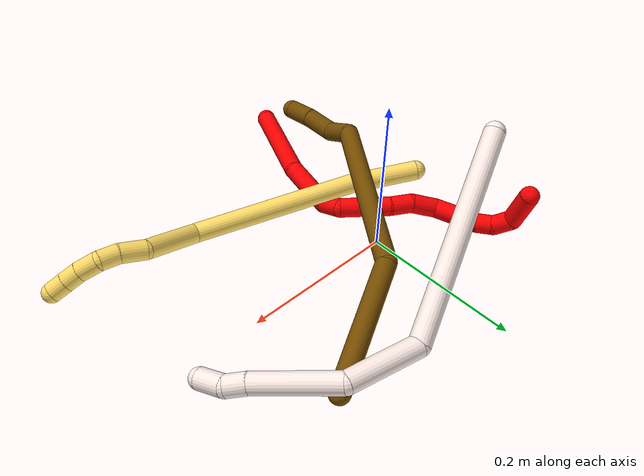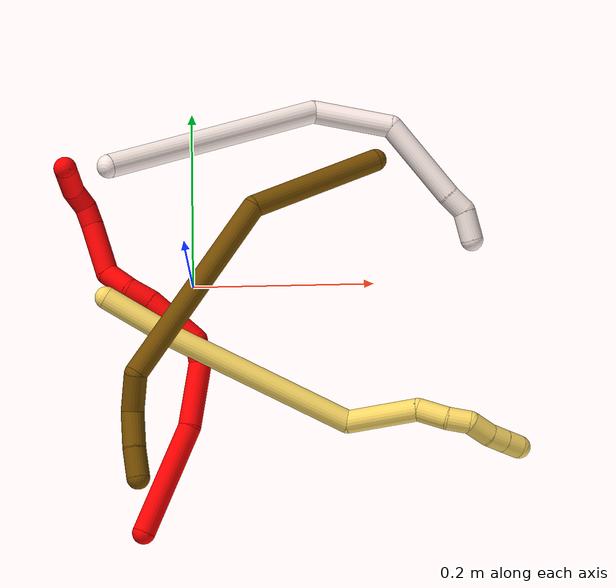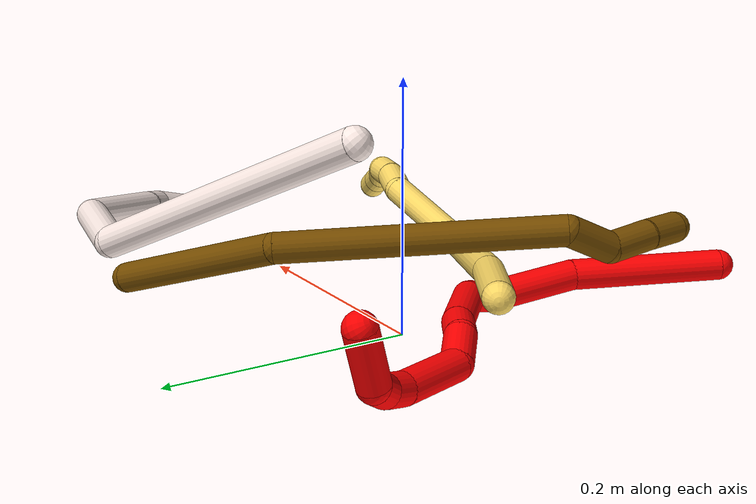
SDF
<sdf version="1.7">
 <world name="default">
  <model name="photoneo_s_sensor">
   <static>1</static>
   <pose>0 0 2 1.57079 1.57079 3.14159</pose>
   <link name="link">
    <inertial><mass>0.1</mass></inertial>
    <sensor name="sensor" type="depth">
     <update_rate>30</update_rate>
     <camera>
      <horizontal_fov>1.22</horizontal_fov>
      <image><width>1920</width><height>1200</height><format>B8G8R8</format></image>
      <clip><near>0.1</near><far>4</far></clip>
      <depth_camera><output>points</output></depth_camera>
     </camera>
     <plugin name="camera_plugin" filename="libgazebo_ros_depth_camera.so">
      <baseline>0.2</baseline>
      <alwaysOn>1</alwaysOn>
      <updateRate>0.0</updateRate>
      <cameraName>camera_ir</cameraName>
      <imageTopicName>/camera/color/image_raw</imageTopicName>
      <cameraInfoTopicName>/camera/color/camera_info</cameraInfoTopicName>
      <depthImageTopicName>/camera/depth/image_raw</depthImageTopicName>
      <depthImageCameraInfoTopicName>/camera/depth/camera_info</depthImageCameraInfoTopicName>
      <pointCloudTopicName>/camera/depth/points</pointCloudTopicName>
      <frameName>fr_optical</frameName>
      <pointCloudCutoff>0.1</pointCloudCutoff>
      <pointCloudCutoffMax>2.0</pointCloudCutoffMax>
      <distortionK1>0</distortionK1>
      <distortionK2>0</distortionK2>
      <distortionK3>0</distortionK3>
      <distortionT1>0</distortionT1>
      <distortionT2>0</distortionT2>
      <CxPrime>0</CxPrime>
      <Cx>0</Cx>
      <Cy>0</Cy>
      <focalLength>0</focalLength>
      <hackBaseline>0</hackBaseline>
     </plugin>
    </sensor>
   </link>
  </model>
  <model name="bin">
   <static>1</static>
   <link name="bottom">
    <collision name="collision-bottom">
     <pose>0 0 -0.01 0 -0 0</pose>
     <geometry><box><size>0.8 0.6 0.02</size></box></geometry>
     <surface>
      <friction><ode><mu>100</mu><mu2>100</mu2></ode></friction>
      <contact><collide_bitmask>65535</collide_bitmask></contact>
     </surface>
    </collision>
   </link>
   <link name="west_wall">
    <collision name="collision-west_wall">
     <pose>-0.41 0 0.1 0 -0 0</pose>
     <geometry><box><size>0.02 0.6 0.2</size></box></geometry>
     <surface>
      <friction><ode><mu>100</mu><mu2>100</mu2></ode></friction>
      <contact><collide_bitmask>65535</collide_bitmask></contact>
     </surface>
    </collision>
   </link>
   <link name="east_wall">
    <collision name="collision-east_wall">
     <pose>0.41 0 0.1 0 -0 0</pose>
     <geometry><box><size>0.02 0.6 0.2</size></box></geometry>
     <surface>
      <friction><ode><mu>100</mu><mu2>100</mu2></ode></friction>
      <contact><collide_bitmask>65535</collide_bitmask></contact>
     </surface>
    </collision>
   </link>
   <link name="south_wall">
    <collision name="collision-south_wall">
     <pose>0 -0.31 0.1 0 -0 0</pose>
     <geometry><box><size>0.8 0.02 0.2</size></box></geometry>
     <surface>
      <friction><ode><mu>100</mu><mu2>100</mu2></ode></friction>
      <contact><collide_bitmask>65535</collide_bitmask></contact>
     </surface>
    </collision>
   </link>
   <link name="north_wall">
    <collision name="collision-north_wall">
     <pose>0 0.31 0.1 0 -0 0</pose>
     <geometry><box><size>0.8 0.02 0.2</size></box></geometry>
     <surface>
      <friction><ode><mu>100</mu><mu2>100</mu2></ode></friction>
      <contact><collide_bitmask>65535</collide_bitmask></contact>
     </surface>
    </collision>
   </link>
  </model>
  <model name="2">
   <static>0</static>
   <link name="2">
    <collision name="collision-cylinder-e_1_1_4">
     <pose>-0.040839 0.022211 0.04113 -0.495154 -0.718082 0.189162</pose>
     <geometry><cylinder><radius>0.0125</radius><length>0.124142</length></cylinder></geometry>
     <surface>
      <friction><ode><mu>1.16</mu><mu2>1.16</mu2><slip1>0</slip1><slip2>0</slip2></ode></friction>
      <contact><ode><kp>1e+06</kp><kd>1</kd><max_vel>0</max_vel><min_depth>0.001</min_depth></ode></contact>
     </surface>
    </collision>
    <visual name="visual-cylinder-e_1_1_4">
     <pose>-0.040839 0.022211 0.04113 -0.495154 -0.718082 0.189162</pose>
     <geometry><cylinder><radius>0.0125</radius><length>0.124142</length></cylinder></geometry>
     <material><ambient>1 0 0 1</ambient></material>
    </visual>
    <collision name="collision-cylinder-e_2_4_5">
     <pose>-0.102853 0.06613 0.103023 -0.807619 -0.613988 0.269277</pose>
     <geometry><cylinder><radius>0.0125</radius><length>0.073505</length></cylinder></geometry>
     <surface>
      <friction><ode><mu>1.16</mu><mu2>1.16</mu2><slip1>0</slip1><slip2>0</slip2></ode></friction>
      <contact><ode><kp>1e+06</kp><kd>1</kd><max_vel>0</max_vel><min_depth>0.001</min_depth></ode></contact>
     </surface>
    </collision>
    <visual name="visual-cylinder-e_2_4_5">
     <pose>-0.102853 0.06613 0.103023 -0.807619 -0.613988 0.269277</pose>
     <geometry><cylinder><radius>0.0125</radius><length>0.073505</length></cylinder></geometry>
     <material><ambient>1 0 0 1</ambient></material>
    </visual>
    <collision name="collision-cylinder-e_3_5_6">
     <pose>-0.133886 0.096148 0.125522 -1.36507 -0.859992 0.713668</pose>
     <geometry><cylinder><radius>0.0125</radius><length>0.02602</length></cylinder></geometry>
     <surface>
      <friction><ode><mu>1.16</mu><mu2>1.16</mu2><slip1>0</slip1><slip2>0</slip2></ode></friction>
      <contact><ode><kp>1e+06</kp><kd>1</kd><max_vel>0</max_vel><min_depth>0.001</min_depth></ode></contact>
     </surface>
    </collision>
    <visual name="visual-cylinder-e_3_5_6">
     <pose>-0.133886 0.096148 0.125522 -1.36507 -0.859992 0.713668</pose>
     <geometry><cylinder><radius>0.0125</radius><length>0.02602</length></cylinder></geometry>
     <material><ambient>1 0 0 1</ambient></material>
    </visual>
    <collision name="collision-cylinder-e_4_6_7">
     <pose>-0.153543 0.133927 0.117036 -1.90461 -0.30433 0.424489</pose>
     <geometry><cylinder><radius>0.0125</radius><length>0.065388</length></cylinder></geometry>
     <surface>
      <friction><ode><mu>1.16</mu><mu2>1.16</mu2><slip1>0</slip1><slip2>0</slip2></ode></friction>
      <contact><ode><kp>1e+06</kp><kd>1</kd><max_vel>0</max_vel><min_depth>0.001</min_depth></ode></contact>
     </surface>
    </collision>
    <visual name="visual-cylinder-e_4_6_7">
     <pose>-0.153543 0.133927 0.117036 -1.90461 -0.30433 0.424489</pose>
     <geometry><cylinder><radius>0.0125</radius><length>0.065388</length></cylinder></geometry>
     <material><ambient>1 0 0 1</ambient></material>
    </visual>
    <collision name="collision-cylinder-e_5_7_8">
     <pose>-0.165566 0.175805 0.100568 -2.03731 -0.158918 0.257079</pose>
     <geometry><cylinder><radius>0.0125</radius><length>0.02814</length></cylinder></geometry>
     <surface>
      <friction><ode><mu>1.16</mu><mu2>1.16</mu2><slip1>0</slip1><slip2>0</slip2></ode></friction>
      <contact><ode><kp>1e+06</kp><kd>1</kd><max_vel>0</max_vel><min_depth>0.001</min_depth></ode></contact>
     </surface>
    </collision>
    <visual name="visual-cylinder-e_5_7_8">
     <pose>-0.165566 0.175805 0.100568 -2.03731 -0.158918 0.257079</pose>
     <geometry><cylinder><radius>0.0125</radius><length>0.02814</length></cylinder></geometry>
     <material><ambient>1 0 0 1</ambient></material>
    </visual>
    <collision name="collision-cylinder-e_6_8_9">
     <pose>-0.16818 0.204904 0.091628 -1.73067 -0.022914 0.026905</pose>
     <geometry><cylinder><radius>0.0125</radius><length>0.033823</length></cylinder></geometry>
     <surface>
      <friction><ode><mu>1.16</mu><mu2>1.16</mu2><slip1>0</slip1><slip2>0</slip2></ode></friction>
      <contact><ode><kp>1e+06</kp><kd>1</kd><max_vel>0</max_vel><min_depth>0.001</min_depth></ode></contact>
     </surface>
    </collision>
    <visual name="visual-cylinder-e_6_8_9">
     <pose>-0.16818 0.204904 0.091628 -1.73067 -0.022914 0.026905</pose>
     <geometry><cylinder><radius>0.0125</radius><length>0.033823</length></cylinder></geometry>
     <material><ambient>1 0 0 1</ambient></material>
    </visual>
    <collision name="collision-cylinder-e_7_9_10">
     <pose>-0.184824 0.245454 0.093493 -1.38206 -0.589815 0.492283</pose>
     <geometry><cylinder><radius>0.0125</radius><length>0.058454</length></cylinder></geometry>
     <surface>
      <friction><ode><mu>1.16</mu><mu2>1.16</mu2><slip1>0</slip1><slip2>0</slip2></ode></friction>
      <contact><ode><kp>1e+06</kp><kd>1</kd><max_vel>0</max_vel><min_depth>0.001</min_depth></ode></contact>
     </surface>
    </collision>
    <visual name="visual-cylinder-e_7_9_10">
     <pose>-0.184824 0.245454 0.093493 -1.38206 -0.589815 0.492283</pose>
     <geometry><cylinder><radius>0.0125</radius><length>0.058454</length></cylinder></geometry>
     <material><ambient>1 0 0 1</ambient></material>
    </visual>
    <collision name="collision-cylinder-e_8_10_11">
     <pose>-0.208308 0.276805 0.09784 -1.59888 -0.767135 0.786826</pose>
     <geometry><cylinder><radius>0.0125</radius><length>0.020826</length></cylinder></geometry>
     <surface>
      <friction><ode><mu>1.16</mu><mu2>1.16</mu2><slip1>0</slip1><slip2>0</slip2></ode></friction>
      <contact><ode><kp>1e+06</kp><kd>1</kd><max_vel>0</max_vel><min_depth>0.001</min_depth></ode></contact>
     </surface>
    </collision>
    <visual name="visual-cylinder-e_8_10_11">
     <pose>-0.208308 0.276805 0.09784 -1.59888 -0.767135 0.786826</pose>
     <geometry><cylinder><radius>0.0125</radius><length>0.020826</length></cylinder></geometry>
     <material><ambient>1 0 0 1</ambient></material>
    </visual>
    <collision name="collision-cylinder-e_9_11_12">
     <pose>-0.223741 0.291389 0.092796 -2.16906 -0.763049 1.2984</pose>
     <geometry><cylinder><radius>0.0125</radius><length>0.023745</length></cylinder></geometry>
     <surface>
      <friction><ode><mu>1.16</mu><mu2>1.16</mu2><slip1>0</slip1><slip2>0</slip2></ode></friction>
      <contact><ode><kp>1e+06</kp><kd>1</kd><max_vel>0</max_vel><min_depth>0.001</min_depth></ode></contact>
     </surface>
    </collision>
    <visual name="visual-cylinder-e_9_11_12">
     <pose>-0.223741 0.291389 0.092796 -2.16906 -0.763049 1.2984</pose>
     <geometry><cylinder><radius>0.0125</radius><length>0.023745</length></cylinder></geometry>
     <material><ambient>1 0 0 1</ambient></material>
    </visual>
    <collision name="collision-cylinder-e_10_12_2">
     <pose>-0.251798 0.295249 0.076852 2.85868 -1.04304 -2.6557</pose>
     <geometry><cylinder><radius>0.0125</radius><length>0.045956</length></cylinder></geometry>
     <surface>
      <friction><ode><mu>1.16</mu><mu2>1.16</mu2><slip1>0</slip1><slip2>0</slip2></ode></friction>
      <contact><ode><kp>1e+06</kp><kd>1</kd><max_vel>0</max_vel><min_depth>0.001</min_depth></ode></contact>
     </surface>
    </collision>
    <visual name="visual-cylinder-e_10_12_2">
     <pose>-0.251798 0.295249 0.076852 2.85868 -1.04304 -2.6557</pose>
     <geometry><cylinder><radius>0.0125</radius><length>0.045956</length></cylinder></geometry>
     <material><ambient>1 0 0 1</ambient></material>
    </visual>
    <collision name="collision-sphere-2">
     <pose>-0.27165 0.292019 0.065741 0 -0 0</pose>
     <geometry><sphere><radius>0.0125</radius></sphere></geometry>
     <surface>
      <friction><ode><mu>1.16</mu><mu2>1.16</mu2><slip1>0</slip1><slip2>0</slip2></ode></friction>
      <contact><ode><kp>1e+06</kp><kd>1</kd><max_vel>0</max_vel><min_depth>0.001</min_depth></ode></contact>
     </surface>
    </collision>
    <visual name="visual-sphere-2">
     <pose>-0.27165 0.292019 0.065741 0 -0 0</pose>
     <geometry><sphere><radius>0.0125</radius></sphere></geometry>
     <material><ambient>1 0 0 1</ambient></material>
    </visual>
    <collision name="collision-sphere-12">
     <pose>-0.231947 0.298479 0.087964 0 -0 0</pose>
     <geometry><sphere><radius>0.0125</radius></sphere></geometry>
     <surface>
      <friction><ode><mu>1.16</mu><mu2>1.16</mu2><slip1>0</slip1><slip2>0</slip2></ode></friction>
      <contact><ode><kp>1e+06</kp><kd>1</kd><max_vel>0</max_vel><min_depth>0.001</min_depth></ode></contact>
     </surface>
    </collision>
    <visual name="visual-sphere-12">
     <pose>-0.231947 0.298479 0.087964 0 -0 0</pose>
     <geometry><sphere><radius>0.0125</radius></sphere></geometry>
     <material><ambient>1 0 0 1</ambient></material>
    </visual>
    <collision name="collision-sphere-11">
     <pose>-0.215535 0.284298 0.097629 0 -0 0</pose>
     <geometry><sphere><radius>0.0125</radius></sphere></geometry>
     <surface>
      <friction><ode><mu>1.16</mu><mu2>1.16</mu2><slip1>0</slip1><slip2>0</slip2></ode></friction>
      <contact><ode><kp>1e+06</kp><kd>1</kd><max_vel>0</max_vel><min_depth>0.001</min_depth></ode></contact>
     </surface>
    </collision>
    <visual name="visual-sphere-11">
     <pose>-0.215535 0.284298 0.097629 0 -0 0</pose>
     <geometry><sphere><radius>0.0125</radius></sphere></geometry>
     <material><ambient>1 0 0 1</ambient></material>
    </visual>
    <collision name="collision-sphere-10">
     <pose>-0.20108 0.269311 0.09805 0 -0 0</pose>
     <geometry><sphere><radius>0.0125</radius></sphere></geometry>
     <surface>
      <friction><ode><mu>1.16</mu><mu2>1.16</mu2><slip1>0</slip1><slip2>0</slip2></ode></friction>
      <contact><ode><kp>1e+06</kp><kd>1</kd><max_vel>0</max_vel><min_depth>0.001</min_depth></ode></contact>
     </surface>
    </collision>
    <visual name="visual-sphere-10">
     <pose>-0.20108 0.269311 0.09805 0 -0 0</pose>
     <geometry><sphere><radius>0.0125</radius></sphere></geometry>
     <material><ambient>1 0 0 1</ambient></material>
    </visual>
    <collision name="collision-sphere-9">
     <pose>-0.168568 0.221596 0.088936 0 -0 0</pose>
     <geometry><sphere><radius>0.0125</radius></sphere></geometry>
     <surface>
      <friction><ode><mu>1.16</mu><mu2>1.16</mu2><slip1>0</slip1><slip2>0</slip2></ode></friction>
      <contact><ode><kp>1e+06</kp><kd>1</kd><max_vel>0</max_vel><min_depth>0.001</min_depth></ode></contact>
     </surface>
    </collision>
    <visual name="visual-sphere-9">
     <pose>-0.168568 0.221596 0.088936 0 -0 0</pose>
     <geometry><sphere><radius>0.0125</radius></sphere></geometry>
     <material><ambient>1 0 0 1</ambient></material>
    </visual>
    <collision name="collision-sphere-4">
     <pose>-0.081678 0.044422 0.082259 0 -0 0</pose>
     <geometry><sphere><radius>0.0125</radius></sphere></geometry>
     <surface>
      <friction><ode><mu>1.16</mu><mu2>1.16</mu2><slip1>0</slip1><slip2>0</slip2></ode></friction>
      <contact><ode><kp>1e+06</kp><kd>1</kd><max_vel>0</max_vel><min_depth>0.001</min_depth></ode></contact>
     </surface>
    </collision>
    <visual name="visual-sphere-4">
     <pose>-0.081678 0.044422 0.082259 0 -0 0</pose>
     <geometry><sphere><radius>0.0125</radius></sphere></geometry>
     <material><ambient>1 0 0 1</ambient></material>
    </visual>
    <collision name="collision-sphere-1">
     <geometry><sphere><radius>0.0125</radius></sphere></geometry>
     <surface>
      <friction><ode><mu>1.16</mu><mu2>1.16</mu2><slip1>0</slip1><slip2>0</slip2></ode></friction>
      <contact><ode><kp>1e+06</kp><kd>1</kd><max_vel>0</max_vel><min_depth>0.001</min_depth></ode></contact>
     </surface>
    </collision>
    <visual name="visual-sphere-1">
     <geometry><sphere><radius>0.0125</radius></sphere></geometry>
     <material><ambient>1 0 0 1</ambient></material>
    </visual>
    <collision name="collision-sphere-8">
     <pose>-0.167793 0.188213 0.094319 0 -0 0</pose>
     <geometry><sphere><radius>0.0125</radius></sphere></geometry>
     <surface>
      <friction><ode><mu>1.16</mu><mu2>1.16</mu2><slip1>0</slip1><slip2>0</slip2></ode></friction>
      <contact><ode><kp>1e+06</kp><kd>1</kd><max_vel>0</max_vel><min_depth>0.001</min_depth></ode></contact>
     </surface>
    </collision>
    <visual name="visual-sphere-8">
     <pose>-0.167793 0.188213 0.094319 0 -0 0</pose>
     <geometry><sphere><radius>0.0125</radius></sphere></geometry>
     <material><ambient>1 0 0 1</ambient></material>
    </visual>
    <collision name="collision-sphere-5">
     <pose>-0.124027 0.087839 0.123788 0 -0 0</pose>
     <geometry><sphere><radius>0.0125</radius></sphere></geometry>
     <surface>
      <friction><ode><mu>1.16</mu><mu2>1.16</mu2><slip1>0</slip1><slip2>0</slip2></ode></friction>
      <contact><ode><kp>1e+06</kp><kd>1</kd><max_vel>0</max_vel><min_depth>0.001</min_depth></ode></contact>
     </surface>
    </collision>
    <visual name="visual-sphere-5">
     <pose>-0.124027 0.087839 0.123788 0 -0 0</pose>
     <geometry><sphere><radius>0.0125</radius></sphere></geometry>
     <material><ambient>1 0 0 1</ambient></material>
    </visual>
    <collision name="collision-sphere-6">
     <pose>-0.143746 0.104457 0.127256 0 -0 0</pose>
     <geometry><sphere><radius>0.0125</radius></sphere></geometry>
     <surface>
      <friction><ode><mu>1.16</mu><mu2>1.16</mu2><slip1>0</slip1><slip2>0</slip2></ode></friction>
      <contact><ode><kp>1e+06</kp><kd>1</kd><max_vel>0</max_vel><min_depth>0.001</min_depth></ode></contact>
     </surface>
    </collision>
    <visual name="visual-sphere-6">
     <pose>-0.143746 0.104457 0.127256 0 -0 0</pose>
     <geometry><sphere><radius>0.0125</radius></sphere></geometry>
     <material><ambient>1 0 0 1</ambient></material>
    </visual>
    <collision name="collision-sphere-7">
     <pose>-0.16334 0.163397 0.106816 0 -0 0</pose>
     <geometry><sphere><radius>0.0125</radius></sphere></geometry>
     <surface>
      <friction><ode><mu>1.16</mu><mu2>1.16</mu2><slip1>0</slip1><slip2>0</slip2></ode></friction>
      <contact><ode><kp>1e+06</kp><kd>1</kd><max_vel>0</max_vel><min_depth>0.001</min_depth></ode></contact>
     </surface>
    </collision>
    <visual name="visual-sphere-7">
     <pose>-0.16334 0.163397 0.106816 0 -0 0</pose>
     <geometry><sphere><radius>0.0125</radius></sphere></geometry>
     <material><ambient>1 0 0 1</ambient></material>
    </visual>
    <inertial>
     <pose>-0.137055 0.14271 0.085529 0 -0 0</pose>
     <mass>0.5</mass>
     <inertia>
      <ixx>0.000221</ixx>
      <ixy>0</ixy>
      <ixz>0</ixz>
      <iyy>0.000267</iyy>
      <iyz>0</iyz>
      <izz>3.7e-05</izz>
     </inertia>
    </inertial>
   </link>
   <pose>-0.054416 -0.27444 0.024196 -2.51314 0.826495 -1.88234</pose>
  </model>
  <model name="5">
   <static>0</static>
   <link name="5">
    <collision name="collision-cylinder-e_1_1_4">
     <pose>-0.000736 -0.003178 0.042032 0.075477 -0.017454 -0.000659</pose>
     <geometry><cylinder><radius>0.0125</radius><length>0.084317</length></cylinder></geometry>
     <surface>
      <friction><ode><mu>1.16</mu><mu2>1.16</mu2><slip1>0</slip1><slip2>0</slip2></ode></friction>
      <contact><ode><kp>1e+06</kp><kd>1</kd><max_vel>0</max_vel><min_depth>0.001</min_depth></ode></contact>
     </surface>
    </collision>
    <visual name="visual-cylinder-e_1_1_4">
     <pose>-0.000736 -0.003178 0.042032 0.075477 -0.017454 -0.000659</pose>
     <geometry><cylinder><radius>0.0125</radius><length>0.084317</length></cylinder></geometry>
     <material><ambient>1 0.858824 0.4 1</ambient></material>
    </visual>
    <collision name="collision-cylinder-e_2_4_5">
     <pose>-0.005713 -0.02486 0.187675 0.176717 -0.04028 -0.003569</pose>
     <geometry><cylinder><radius>0.0125</radius><length>0.210671</length></cylinder></geometry>
     <surface>
      <friction><ode><mu>1.16</mu><mu2>1.16</mu2><slip1>0</slip1><slip2>0</slip2></ode></friction>
      <contact><ode><kp>1e+06</kp><kd>1</kd><max_vel>0</max_vel><min_depth>0.001</min_depth></ode></contact>
     </surface>
    </collision>
    <visual name="visual-cylinder-e_2_4_5">
     <pose>-0.005713 -0.02486 0.187675 0.176717 -0.04028 -0.003569</pose>
     <geometry><cylinder><radius>0.0125</radius><length>0.210671</length></cylinder></geometry>
     <material><ambient>1 0.858824 0.4 1</ambient></material>
    </visual>
    <collision name="collision-cylinder-e_3_5_6">
     <pose>0.012804 -0.06016 0.319388 0.53876 0.607467 0.172641</pose>
     <geometry><cylinder><radius>0.0125</radius><length>0.079745</length></cylinder></geometry>
     <surface>
      <friction><ode><mu>1.16</mu><mu2>1.16</mu2><slip1>0</slip1><slip2>0</slip2></ode></friction>
      <contact><ode><kp>1e+06</kp><kd>1</kd><max_vel>0</max_vel><min_depth>0.001</min_depth></ode></contact>
     </surface>
    </collision>
    <visual name="visual-cylinder-e_3_5_6">
     <pose>0.012804 -0.06016 0.319388 0.53876 0.607467 0.172641</pose>
     <geometry><cylinder><radius>0.0125</radius><length>0.079745</length></cylinder></geometry>
     <material><ambient>1 0.858824 0.4 1</ambient></material>
    </visual>
    <collision name="collision-cylinder-e_4_6_7">
     <pose>0.040399 -0.079306 0.363091 0.14938 0.297463 0.022424</pose>
     <geometry><cylinder><radius>0.0125</radius><length>0.033005</length></cylinder></geometry>
     <surface>
      <friction><ode><mu>1.16</mu><mu2>1.16</mu2><slip1>0</slip1><slip2>0</slip2></ode></friction>
      <contact><ode><kp>1e+06</kp><kd>1</kd><max_vel>0</max_vel><min_depth>0.001</min_depth></ode></contact>
     </surface>
    </collision>
    <visual name="visual-cylinder-e_4_6_7">
     <pose>0.040399 -0.079306 0.363091 0.14938 0.297463 0.022424</pose>
     <geometry><cylinder><radius>0.0125</radius><length>0.033005</length></cylinder></geometry>
     <material><ambient>1 0.858824 0.4 1</ambient></material>
    </visual>
    <collision name="collision-cylinder-e_5_7_8">
     <pose>0.047748 -0.085807 0.390006 0.351824 0.205518 0.036656</pose>
     <geometry><cylinder><radius>0.0125</radius><length>0.024619</length></cylinder></geometry>
     <surface>
      <friction><ode><mu>1.16</mu><mu2>1.16</mu2><slip1>0</slip1><slip2>0</slip2></ode></friction>
      <contact><ode><kp>1e+06</kp><kd>1</kd><max_vel>0</max_vel><min_depth>0.001</min_depth></ode></contact>
     </surface>
    </collision>
    <visual name="visual-cylinder-e_5_7_8">
     <pose>0.047748 -0.085807 0.390006 0.351824 0.205518 0.036656</pose>
     <geometry><cylinder><radius>0.0125</radius><length>0.024619</length></cylinder></geometry>
     <material><ambient>1 0.858824 0.4 1</ambient></material>
    </visual>
    <collision name="collision-cylinder-e_6_8_9">
     <pose>0.045562 -0.093061 0.413637 0.246636 -0.354245 -0.044365</pose>
     <geometry><cylinder><radius>0.0125</radius><length>0.027088</length></cylinder></geometry>
     <surface>
      <friction><ode><mu>1.16</mu><mu2>1.16</mu2><slip1>0</slip1><slip2>0</slip2></ode></friction>
      <contact><ode><kp>1e+06</kp><kd>1</kd><max_vel>0</max_vel><min_depth>0.001</min_depth></ode></contact>
     </surface>
    </collision>
    <visual name="visual-cylinder-e_6_8_9">
     <pose>0.045562 -0.093061 0.413637 0.246636 -0.354245 -0.044365</pose>
     <geometry><cylinder><radius>0.0125</radius><length>0.027088</length></cylinder></geometry>
     <material><ambient>1 0.858824 0.4 1</ambient></material>
    </visual>
    <collision name="collision-cylinder-e_7_9_10">
     <pose>0.037893 -0.100233 0.434811 0.430904 -0.295901 -0.065211</pose>
     <geometry><cylinder><radius>0.0125</radius><length>0.020378</length></cylinder></geometry>
     <surface>
      <friction><ode><mu>1.16</mu><mu2>1.16</mu2><slip1>0</slip1><slip2>0</slip2></ode></friction>
      <contact><ode><kp>1e+06</kp><kd>1</kd><max_vel>0</max_vel><min_depth>0.001</min_depth></ode></contact>
     </surface>
    </collision>
    <visual name="visual-cylinder-e_7_9_10">
     <pose>0.037893 -0.100233 0.434811 0.430904 -0.295901 -0.065211</pose>
     <geometry><cylinder><radius>0.0125</radius><length>0.020378</length></cylinder></geometry>
     <material><ambient>1 0.858824 0.4 1</ambient></material>
    </visual>
    <collision name="collision-cylinder-e_8_10_2">
     <pose>0.031911 -0.108451 0.452356 0.445221 -0.30301 -0.069092</pose>
     <geometry><cylinder><radius>0.0125</radius><length>0.020177</length></cylinder></geometry>
     <surface>
      <friction><ode><mu>1.16</mu><mu2>1.16</mu2><slip1>0</slip1><slip2>0</slip2></ode></friction>
      <contact><ode><kp>1e+06</kp><kd>1</kd><max_vel>0</max_vel><min_depth>0.001</min_depth></ode></contact>
     </surface>
    </collision>
    <visual name="visual-cylinder-e_8_10_2">
     <pose>0.031911 -0.108451 0.452356 0.445221 -0.30301 -0.069092</pose>
     <geometry><cylinder><radius>0.0125</radius><length>0.020177</length></cylinder></geometry>
     <material><ambient>1 0.858824 0.4 1</ambient></material>
    </visual>
    <collision name="collision-sphere-2">
     <pose>0.028901 -0.112597 0.461046 0 -0 0</pose>
     <geometry><sphere><radius>0.0125</radius></sphere></geometry>
     <surface>
      <friction><ode><mu>1.16</mu><mu2>1.16</mu2><slip1>0</slip1><slip2>0</slip2></ode></friction>
      <contact><ode><kp>1e+06</kp><kd>1</kd><max_vel>0</max_vel><min_depth>0.001</min_depth></ode></contact>
     </surface>
    </collision>
    <visual name="visual-sphere-2">
     <pose>0.028901 -0.112597 0.461046 0 -0 0</pose>
     <geometry><sphere><radius>0.0125</radius></sphere></geometry>
     <material><ambient>1 0.858824 0.4 1</ambient></material>
    </visual>
    <collision name="collision-sphere-10">
     <pose>0.034922 -0.104304 0.443666 0 -0 0</pose>
     <geometry><sphere><radius>0.0125</radius></sphere></geometry>
     <surface>
      <friction><ode><mu>1.16</mu><mu2>1.16</mu2><slip1>0</slip1><slip2>0</slip2></ode></friction>
      <contact><ode><kp>1e+06</kp><kd>1</kd><max_vel>0</max_vel><min_depth>0.001</min_depth></ode></contact>
     </surface>
    </collision>
    <visual name="visual-sphere-10">
     <pose>0.034922 -0.104304 0.443666 0 -0 0</pose>
     <geometry><sphere><radius>0.0125</radius></sphere></geometry>
     <material><ambient>1 0.858824 0.4 1</ambient></material>
    </visual>
    <collision name="collision-sphere-9">
     <pose>0.040864 -0.096162 0.425956 0 -0 0</pose>
     <geometry><sphere><radius>0.0125</radius></sphere></geometry>
     <surface>
      <friction><ode><mu>1.16</mu><mu2>1.16</mu2><slip1>0</slip1><slip2>0</slip2></ode></friction>
      <contact><ode><kp>1e+06</kp><kd>1</kd><max_vel>0</max_vel><min_depth>0.001</min_depth></ode></contact>
     </surface>
    </collision>
    <visual name="visual-sphere-9">
     <pose>0.040864 -0.096162 0.425956 0 -0 0</pose>
     <geometry><sphere><radius>0.0125</radius></sphere></geometry>
     <material><ambient>1 0.858824 0.4 1</ambient></material>
    </visual>
    <collision name="collision-sphere-4">
     <pose>-0.001472 -0.006357 0.084064 0 -0 0</pose>
     <geometry><sphere><radius>0.0125</radius></sphere></geometry>
     <surface>
      <friction><ode><mu>1.16</mu><mu2>1.16</mu2><slip1>0</slip1><slip2>0</slip2></ode></friction>
      <contact><ode><kp>1e+06</kp><kd>1</kd><max_vel>0</max_vel><min_depth>0.001</min_depth></ode></contact>
     </surface>
    </collision>
    <visual name="visual-sphere-4">
     <pose>-0.001472 -0.006357 0.084064 0 -0 0</pose>
     <geometry><sphere><radius>0.0125</radius></sphere></geometry>
     <material><ambient>1 0.858824 0.4 1</ambient></material>
    </visual>
    <collision name="collision-sphere-1">
     <geometry><sphere><radius>0.0125</radius></sphere></geometry>
     <surface>
      <friction><ode><mu>1.16</mu><mu2>1.16</mu2><slip1>0</slip1><slip2>0</slip2></ode></friction>
      <contact><ode><kp>1e+06</kp><kd>1</kd><max_vel>0</max_vel><min_depth>0.001</min_depth></ode></contact>
     </surface>
    </collision>
    <visual name="visual-sphere-1">
     <geometry><sphere><radius>0.0125</radius></sphere></geometry>
     <material><ambient>1 0.858824 0.4 1</ambient></material>
    </visual>
    <collision name="collision-sphere-8">
     <pose>0.05026 -0.08996 0.401318 0 -0 0</pose>
     <geometry><sphere><radius>0.0125</radius></sphere></geometry>
     <surface>
      <friction><ode><mu>1.16</mu><mu2>1.16</mu2><slip1>0</slip1><slip2>0</slip2></ode></friction>
      <contact><ode><kp>1e+06</kp><kd>1</kd><max_vel>0</max_vel><min_depth>0.001</min_depth></ode></contact>
     </surface>
    </collision>
    <visual name="visual-sphere-8">
     <pose>0.05026 -0.08996 0.401318 0 -0 0</pose>
     <geometry><sphere><radius>0.0125</radius></sphere></geometry>
     <material><ambient>1 0.858824 0.4 1</ambient></material>
    </visual>
    <collision name="collision-sphere-5">
     <pose>-0.009955 -0.043363 0.291286 0 -0 0</pose>
     <geometry><sphere><radius>0.0125</radius></sphere></geometry>
     <surface>
      <friction><ode><mu>1.16</mu><mu2>1.16</mu2><slip1>0</slip1><slip2>0</slip2></ode></friction>
      <contact><ode><kp>1e+06</kp><kd>1</kd><max_vel>0</max_vel><min_depth>0.001</min_depth></ode></contact>
     </surface>
    </collision>
    <visual name="visual-sphere-5">
     <pose>-0.009955 -0.043363 0.291286 0 -0 0</pose>
     <geometry><sphere><radius>0.0125</radius></sphere></geometry>
     <material><ambient>1 0.858824 0.4 1</ambient></material>
    </visual>
    <collision name="collision-sphere-6">
     <pose>0.035563 -0.076958 0.347489 0 -0 0</pose>
     <geometry><sphere><radius>0.0125</radius></sphere></geometry>
     <surface>
      <friction><ode><mu>1.16</mu><mu2>1.16</mu2><slip1>0</slip1><slip2>0</slip2></ode></friction>
      <contact><ode><kp>1e+06</kp><kd>1</kd><max_vel>0</max_vel><min_depth>0.001</min_depth></ode></contact>
     </surface>
    </collision>
    <visual name="visual-sphere-6">
     <pose>0.035563 -0.076958 0.347489 0 -0 0</pose>
     <geometry><sphere><radius>0.0125</radius></sphere></geometry>
     <material><ambient>1 0.858824 0.4 1</ambient></material>
    </visual>
    <collision name="collision-sphere-7">
     <pose>0.045236 -0.081654 0.378693 0 -0 0</pose>
     <geometry><sphere><radius>0.0125</radius></sphere></geometry>
     <surface>
      <friction><ode><mu>1.16</mu><mu2>1.16</mu2><slip1>0</slip1><slip2>0</slip2></ode></friction>
      <contact><ode><kp>1e+06</kp><kd>1</kd><max_vel>0</max_vel><min_depth>0.001</min_depth></ode></contact>
     </surface>
    </collision>
    <visual name="visual-sphere-7">
     <pose>0.045236 -0.081654 0.378693 0 -0 0</pose>
     <geometry><sphere><radius>0.0125</radius></sphere></geometry>
     <material><ambient>1 0.858824 0.4 1</ambient></material>
    </visual>
    <inertial>
     <pose>0.009829 -0.043568 0.238658 0 -0 0</pose>
     <mass>0.5</mass>
     <inertia>
      <ixx>0.000894</ixx>
      <ixy>0</ixy>
      <ixz>0</ixz>
      <iyy>0.000875</iyy>
      <iyz>0</iyz>
      <izz>0.000207</izz>
     </inertia>
    </inertial>
   </link>
   <pose>-0.091981 -0.022684 0.053448 1.69622 -1.16072 0.853467</pose>
  </model>
  <model name="11">
   <static>0</static>
   <link name="11">
    <collision name="collision-cylinder-e_1_1_4">
     <pose>0.069253 0.030934 -0.103881 -2.85217 0.568554 -2.21631</pose>
     <geometry><cylinder><radius>0.0125</radius><length>0.257247</length></cylinder></geometry>
     <surface>
      <friction><ode><mu>1.16</mu><mu2>1.16</mu2><slip1>0</slip1><slip2>0</slip2></ode></friction>
      <contact><ode><kp>1e+06</kp><kd>1</kd><max_vel>0</max_vel><min_depth>0.001</min_depth></ode></contact>
     </surface>
    </collision>
    <visual name="visual-cylinder-e_1_1_4">
     <pose>0.069253 0.030934 -0.103881 -2.85217 0.568554 -2.21631</pose>
     <geometry><cylinder><radius>0.0125</radius><length>0.257247</length></cylinder></geometry>
     <material><ambient>1 0.933333 0.909804 1</ambient></material>
    </visual>
    <collision name="collision-cylinder-e_2_4_5">
     <pose>0.178965 0.075271 -0.217368 -2.19268 1.18377 -1.83687</pose>
     <geometry><cylinder><radius>0.0125</radius><length>0.087382</length></cylinder></geometry>
     <surface>
      <friction><ode><mu>1.16</mu><mu2>1.16</mu2><slip1>0</slip1><slip2>0</slip2></ode></friction>
      <contact><ode><kp>1e+06</kp><kd>1</kd><max_vel>0</max_vel><min_depth>0.001</min_depth></ode></contact>
     </surface>
    </collision>
    <visual name="visual-cylinder-e_2_4_5">
     <pose>0.178965 0.075271 -0.217368 -2.19268 1.18377 -1.83687</pose>
     <geometry><cylinder><radius>0.0125</radius><length>0.087382</length></cylinder></geometry>
     <material><ambient>1 0.933333 0.909804 1</ambient></material>
    </visual>
    <collision name="collision-cylinder-e_3_5_6">
     <pose>0.266106 0.076116 -0.219568 1.03786 1.26807 0.795205</pose>
     <geometry><cylinder><radius>0.0125</radius><length>0.09781</length></cylinder></geometry>
     <surface>
      <friction><ode><mu>1.16</mu><mu2>1.16</mu2><slip1>0</slip1><slip2>0</slip2></ode></friction>
      <contact><ode><kp>1e+06</kp><kd>1</kd><max_vel>0</max_vel><min_depth>0.001</min_depth></ode></contact>
     </surface>
    </collision>
    <visual name="visual-cylinder-e_3_5_6">
     <pose>0.266106 0.076116 -0.219568 1.03786 1.26807 0.795205</pose>
     <geometry><cylinder><radius>0.0125</radius><length>0.09781</length></cylinder></geometry>
     <material><ambient>1 0.933333 0.909804 1</ambient></material>
    </visual>
    <collision name="collision-cylinder-e_4_6_7">
     <pose>0.324785 0.060908 -0.21169 1.39483 1.35006 1.18158</pose>
     <geometry><cylinder><radius>0.0125</radius><length>0.024593</length></cylinder></geometry>
     <surface>
      <friction><ode><mu>1.16</mu><mu2>1.16</mu2><slip1>0</slip1><slip2>0</slip2></ode></friction>
      <contact><ode><kp>1e+06</kp><kd>1</kd><max_vel>0</max_vel><min_depth>0.001</min_depth></ode></contact>
     </surface>
    </collision>
    <visual name="visual-cylinder-e_4_6_7">
     <pose>0.324785 0.060908 -0.21169 1.39483 1.35006 1.18158</pose>
     <geometry><cylinder><radius>0.0125</radius><length>0.024593</length></cylinder></geometry>
     <material><ambient>1 0.933333 0.909804 1</ambient></material>
    </visual>
    <collision name="collision-cylinder-e_5_7_2">
     <pose>0.349063 0.048576 -0.206005 1.07686 0.8405 0.52167</pose>
     <geometry><cylinder><radius>0.0125</radius><length>0.032967</length></cylinder></geometry>
     <surface>
      <friction><ode><mu>1.16</mu><mu2>1.16</mu2><slip1>0</slip1><slip2>0</slip2></ode></friction>
      <contact><ode><kp>1e+06</kp><kd>1</kd><max_vel>0</max_vel><min_depth>0.001</min_depth></ode></contact>
     </surface>
    </collision>
    <visual name="visual-cylinder-e_5_7_2">
     <pose>0.349063 0.048576 -0.206005 1.07686 0.8405 0.52167</pose>
     <geometry><cylinder><radius>0.0125</radius><length>0.032967</length></cylinder></geometry>
     <material><ambient>1 0.933333 0.909804 1</ambient></material>
    </visual>
    <collision name="collision-sphere-2">
     <pose>0.361343 0.038894 -0.200792 0 -0 0</pose>
     <geometry><sphere><radius>0.0125</radius></sphere></geometry>
     <surface>
      <friction><ode><mu>1.16</mu><mu2>1.16</mu2><slip1>0</slip1><slip2>0</slip2></ode></friction>
      <contact><ode><kp>1e+06</kp><kd>1</kd><max_vel>0</max_vel><min_depth>0.001</min_depth></ode></contact>
     </surface>
    </collision>
    <visual name="visual-sphere-2">
     <pose>0.361343 0.038894 -0.200792 0 -0 0</pose>
     <geometry><sphere><radius>0.0125</radius></sphere></geometry>
     <material><ambient>1 0.933333 0.909804 1</ambient></material>
    </visual>
    <collision name="collision-sphere-7">
     <pose>0.336783 0.058257 -0.211218 0 -0 0</pose>
     <geometry><sphere><radius>0.0125</radius></sphere></geometry>
     <surface>
      <friction><ode><mu>1.16</mu><mu2>1.16</mu2><slip1>0</slip1><slip2>0</slip2></ode></friction>
      <contact><ode><kp>1e+06</kp><kd>1</kd><max_vel>0</max_vel><min_depth>0.001</min_depth></ode></contact>
     </surface>
    </collision>
    <visual name="visual-sphere-7">
     <pose>0.336783 0.058257 -0.211218 0 -0 0</pose>
     <geometry><sphere><radius>0.0125</radius></sphere></geometry>
     <material><ambient>1 0.933333 0.909804 1</ambient></material>
    </visual>
    <collision name="collision-sphere-6">
     <pose>0.312787 0.063559 -0.212161 0 -0 0</pose>
     <geometry><sphere><radius>0.0125</radius></sphere></geometry>
     <surface>
      <friction><ode><mu>1.16</mu><mu2>1.16</mu2><slip1>0</slip1><slip2>0</slip2></ode></friction>
      <contact><ode><kp>1e+06</kp><kd>1</kd><max_vel>0</max_vel><min_depth>0.001</min_depth></ode></contact>
     </surface>
    </collision>
    <visual name="visual-sphere-6">
     <pose>0.312787 0.063559 -0.212161 0 -0 0</pose>
     <geometry><sphere><radius>0.0125</radius></sphere></geometry>
     <material><ambient>1 0.933333 0.909804 1</ambient></material>
    </visual>
    <collision name="collision-sphere-5">
     <pose>0.219425 0.088674 -0.226976 0 -0 0</pose>
     <geometry><sphere><radius>0.0125</radius></sphere></geometry>
     <surface>
      <friction><ode><mu>1.16</mu><mu2>1.16</mu2><slip1>0</slip1><slip2>0</slip2></ode></friction>
      <contact><ode><kp>1e+06</kp><kd>1</kd><max_vel>0</max_vel><min_depth>0.001</min_depth></ode></contact>
     </surface>
    </collision>
    <visual name="visual-sphere-5">
     <pose>0.219425 0.088674 -0.226976 0 -0 0</pose>
     <geometry><sphere><radius>0.0125</radius></sphere></geometry>
     <material><ambient>1 0.933333 0.909804 1</ambient></material>
    </visual>
    <collision name="collision-sphere-1">
     <geometry><sphere><radius>0.0125</radius></sphere></geometry>
     <surface>
      <friction><ode><mu>1.16</mu><mu2>1.16</mu2><slip1>0</slip1><slip2>0</slip2></ode></friction>
      <contact><ode><kp>1e+06</kp><kd>1</kd><max_vel>0</max_vel><min_depth>0.001</min_depth></ode></contact>
     </surface>
    </collision>
    <visual name="visual-sphere-1">
     <geometry><sphere><radius>0.0125</radius></sphere></geometry>
     <material><ambient>1 0.933333 0.909804 1</ambient></material>
    </visual>
    <collision name="collision-sphere-4">
     <pose>0.138506 0.061867 -0.207761 0 -0 0</pose>
     <geometry><sphere><radius>0.0125</radius></sphere></geometry>
     <surface>
      <friction><ode><mu>1.16</mu><mu2>1.16</mu2><slip1>0</slip1><slip2>0</slip2></ode></friction>
      <contact><ode><kp>1e+06</kp><kd>1</kd><max_vel>0</max_vel><min_depth>0.001</min_depth></ode></contact>
     </surface>
    </collision>
    <visual name="visual-sphere-4">
     <pose>0.138506 0.061867 -0.207761 0 -0 0</pose>
     <geometry><sphere><radius>0.0125</radius></sphere></geometry>
     <material><ambient>1 0.933333 0.909804 1</ambient></material>
    </visual>
    <inertial>
     <pose>0.157953 0.050158 -0.158381 0 -0 0</pose>
     <mass>0.5</mass>
     <inertia>
      <ixx>-0.001646</ixx>
      <ixy>0</ixy>
      <ixz>0</ixz>
      <iyy>0.000173</iyy>
      <iyz>0</iyz>
      <izz>-0.001261</izz>
     </inertia>
    </inertial>
   </link>
   <pose>-0.077905 0.087591 0.177469 0.828088 0.105822 -0.587863</pose>
  </model>
  <model name="12">
   <static>0</static>
   <link name="12">
    <collision name="collision-cylinder-e_1_1_4">
     <pose>-0.039907 -0.060913 0.033307 1.07041 -0.521698 -0.31394</pose>
     <geometry><cylinder><radius>0.0125</radius><length>0.160154</length></cylinder></geometry>
     <surface>
      <friction><ode><mu>1.16</mu><mu2>1.16</mu2><slip1>0</slip1><slip2>0</slip2></ode></friction>
      <contact><ode><kp>1e+06</kp><kd>1</kd><max_vel>0</max_vel><min_depth>0.001</min_depth></ode></contact>
     </surface>
    </collision>
    <visual name="visual-cylinder-e_1_1_4">
     <pose>-0.039907 -0.060913 0.033307 1.07041 -0.521698 -0.31394</pose>
     <geometry><cylinder><radius>0.0125</radius><length>0.160154</length></cylinder></geometry>
     <material><ambient>0.466667 0.301961 0 1</ambient></material>
    </visual>
    <collision name="collision-cylinder-e_2_4_5">
     <pose>-0.154221 -0.155716 0.144419 0.410795 -0.719843 -0.156479</pose>
     <geometry><cylinder><radius>0.0125</radius><length>0.225731</length></cylinder></geometry>
     <surface>
      <friction><ode><mu>1.16</mu><mu2>1.16</mu2><slip1>0</slip1><slip2>0</slip2></ode></friction>
      <contact><ode><kp>1e+06</kp><kd>1</kd><max_vel>0</max_vel><min_depth>0.001</min_depth></ode></contact>
     </surface>
    </collision>
    <visual name="visual-cylinder-e_2_4_5">
     <pose>-0.154221 -0.155716 0.144419 0.410795 -0.719843 -0.156479</pose>
     <geometry><cylinder><radius>0.0125</radius><length>0.225731</length></cylinder></geometry>
     <material><ambient>0.466667 0.301961 0 1</ambient></material>
    </visual>
    <collision name="collision-cylinder-e_3_5_6">
     <pose>-0.236665 -0.183237 0.240645 -0.332818 -0.391013 0.066501</pose>
     <geometry><cylinder><radius>0.0125</radius><length>0.042167</length></cylinder></geometry>
     <surface>
      <friction><ode><mu>1.16</mu><mu2>1.16</mu2><slip1>0</slip1><slip2>0</slip2></ode></friction>
      <contact><ode><kp>1e+06</kp><kd>1</kd><max_vel>0</max_vel><min_depth>0.001</min_depth></ode></contact>
     </surface>
    </collision>
    <visual name="visual-cylinder-e_3_5_6">
     <pose>-0.236665 -0.183237 0.240645 -0.332818 -0.391013 0.066501</pose>
     <geometry><cylinder><radius>0.0125</radius><length>0.042167</length></cylinder></geometry>
     <material><ambient>0.466667 0.301961 0 1</ambient></material>
    </visual>
    <collision name="collision-cylinder-e_4_6_7">
     <pose>-0.260976 -0.171017 0.269222 -0.522826 -0.946736 0.272372</pose>
     <geometry><cylinder><radius>0.0125</radius><length>0.040111</length></cylinder></geometry>
     <surface>
      <friction><ode><mu>1.16</mu><mu2>1.16</mu2><slip1>0</slip1><slip2>0</slip2></ode></friction>
      <contact><ode><kp>1e+06</kp><kd>1</kd><max_vel>0</max_vel><min_depth>0.001</min_depth></ode></contact>
     </surface>
    </collision>
    <visual name="visual-cylinder-e_4_6_7">
     <pose>-0.260976 -0.171017 0.269222 -0.522826 -0.946736 0.272372</pose>
     <geometry><cylinder><radius>0.0125</radius><length>0.040111</length></cylinder></geometry>
     <material><ambient>0.466667 0.301961 0 1</ambient></material>
    </visual>
    <collision name="collision-cylinder-e_5_7_2">
     <pose>-0.289327 -0.158935 0.287668 -0.644401 -0.861148 0.3043</pose>
     <geometry><cylinder><radius>0.0125</radius><length>0.031837</length></cylinder></geometry>
     <surface>
      <friction><ode><mu>1.16</mu><mu2>1.16</mu2><slip1>0</slip1><slip2>0</slip2></ode></friction>
      <contact><ode><kp>1e+06</kp><kd>1</kd><max_vel>0</max_vel><min_depth>0.001</min_depth></ode></contact>
     </surface>
    </collision>
    <visual name="visual-cylinder-e_5_7_2">
     <pose>-0.289327 -0.158935 0.287668 -0.644401 -0.861148 0.3043</pose>
     <geometry><cylinder><radius>0.0125</radius><length>0.031837</length></cylinder></geometry>
     <material><ambient>0.466667 0.301961 0 1</ambient></material>
    </visual>
    <collision name="collision-sphere-2">
     <pose>-0.301403 -0.152704 0.295959 0 -0 0</pose>
     <geometry><sphere><radius>0.0125</radius></sphere></geometry>
     <surface>
      <friction><ode><mu>1.16</mu><mu2>1.16</mu2><slip1>0</slip1><slip2>0</slip2></ode></friction>
      <contact><ode><kp>1e+06</kp><kd>1</kd><max_vel>0</max_vel><min_depth>0.001</min_depth></ode></contact>
     </surface>
    </collision>
    <visual name="visual-sphere-2">
     <pose>-0.301403 -0.152704 0.295959 0 -0 0</pose>
     <geometry><sphere><radius>0.0125</radius></sphere></geometry>
     <material><ambient>0.466667 0.301961 0 1</ambient></material>
    </visual>
    <collision name="collision-sphere-7">
     <pose>-0.277252 -0.165165 0.279376 0 -0 0</pose>
     <geometry><sphere><radius>0.0125</radius></sphere></geometry>
     <surface>
      <friction><ode><mu>1.16</mu><mu2>1.16</mu2><slip1>0</slip1><slip2>0</slip2></ode></friction>
      <contact><ode><kp>1e+06</kp><kd>1</kd><max_vel>0</max_vel><min_depth>0.001</min_depth></ode></contact>
     </surface>
    </collision>
    <visual name="visual-sphere-7">
     <pose>-0.277252 -0.165165 0.279376 0 -0 0</pose>
     <geometry><sphere><radius>0.0125</radius></sphere></geometry>
     <material><ambient>0.466667 0.301961 0 1</ambient></material>
    </visual>
    <collision name="collision-sphere-6">
     <pose>-0.244701 -0.176869 0.259068 0 -0 0</pose>
     <geometry><sphere><radius>0.0125</radius></sphere></geometry>
     <surface>
      <friction><ode><mu>1.16</mu><mu2>1.16</mu2><slip1>0</slip1><slip2>0</slip2></ode></friction>
      <contact><ode><kp>1e+06</kp><kd>1</kd><max_vel>0</max_vel><min_depth>0.001</min_depth></ode></contact>
     </surface>
    </collision>
    <visual name="visual-sphere-6">
     <pose>-0.244701 -0.176869 0.259068 0 -0 0</pose>
     <geometry><sphere><radius>0.0125</radius></sphere></geometry>
     <material><ambient>0.466667 0.301961 0 1</ambient></material>
    </visual>
    <collision name="collision-sphere-5">
     <pose>-0.22863 -0.189605 0.222223 0 -0 0</pose>
     <geometry><sphere><radius>0.0125</radius></sphere></geometry>
     <surface>
      <friction><ode><mu>1.16</mu><mu2>1.16</mu2><slip1>0</slip1><slip2>0</slip2></ode></friction>
      <contact><ode><kp>1e+06</kp><kd>1</kd><max_vel>0</max_vel><min_depth>0.001</min_depth></ode></contact>
     </surface>
    </collision>
    <visual name="visual-sphere-5">
     <pose>-0.22863 -0.189605 0.222223 0 -0 0</pose>
     <geometry><sphere><radius>0.0125</radius></sphere></geometry>
     <material><ambient>0.466667 0.301961 0 1</ambient></material>
    </visual>
    <collision name="collision-sphere-1">
     <geometry><sphere><radius>0.0125</radius></sphere></geometry>
     <surface>
      <friction><ode><mu>1.16</mu><mu2>1.16</mu2><slip1>0</slip1><slip2>0</slip2></ode></friction>
      <contact><ode><kp>1e+06</kp><kd>1</kd><max_vel>0</max_vel><min_depth>0.001</min_depth></ode></contact>
     </surface>
    </collision>
    <visual name="visual-sphere-1">
     <geometry><sphere><radius>0.0125</radius></sphere></geometry>
     <material><ambient>0.466667 0.301961 0 1</ambient></material>
    </visual>
    <collision name="collision-sphere-4">
     <pose>-0.079813 -0.121826 0.066615 0 -0 0</pose>
     <geometry><sphere><radius>0.0125</radius></sphere></geometry>
     <surface>
      <friction><ode><mu>1.16</mu><mu2>1.16</mu2><slip1>0</slip1><slip2>0</slip2></ode></friction>
      <contact><ode><kp>1e+06</kp><kd>1</kd><max_vel>0</max_vel><min_depth>0.001</min_depth></ode></contact>
     </surface>
    </collision>
    <visual name="visual-sphere-4">
     <pose>-0.079813 -0.121826 0.066615 0 -0 0</pose>
     <geometry><sphere><radius>0.0125</radius></sphere></geometry>
     <material><ambient>0.466667 0.301961 0 1</ambient></material>
    </visual>
    <inertial>
     <pose>-0.141725 -0.129103 0.136077 0 -0 0</pose>
     <mass>0.5</mass>
     <inertia>
      <ixx>0.000792</ixx>
      <ixy>0</ixy>
      <ixz>0</ixz>
      <iyy>0.000923</iyy>
      <iyz>0</iyz>
      <izz>0.001396</izz>
     </inertia>
    </inertial>
   </link>
   <pose>0.206014 0.139293 0.012582 -2.65159 0.710385 1.60171</pose>
  </model>
 </world>
</sdf>
